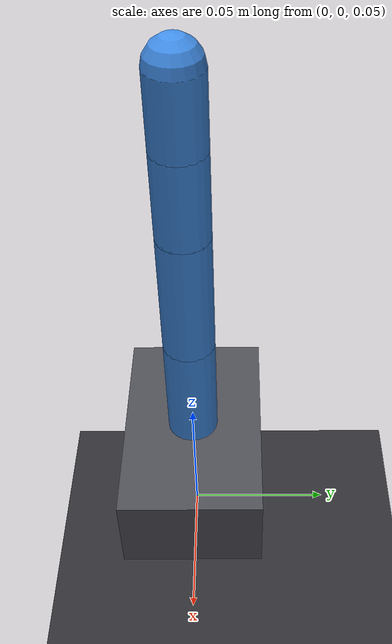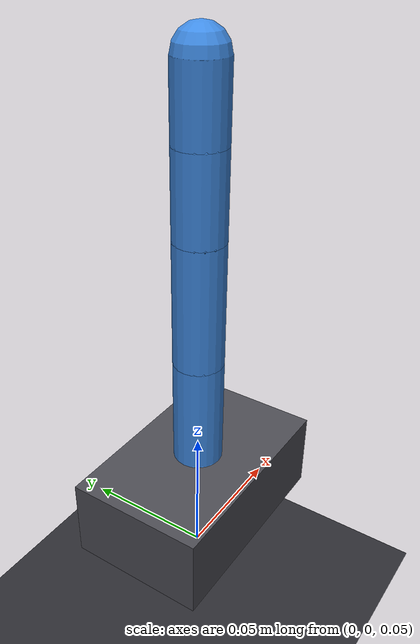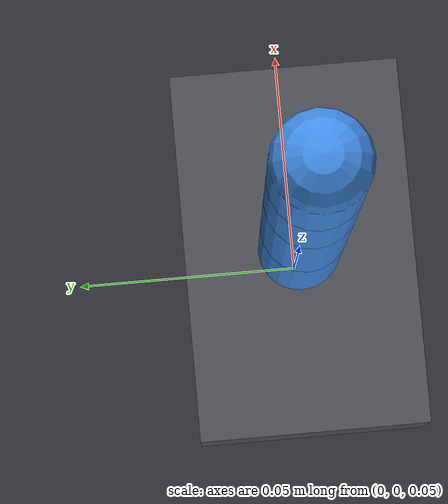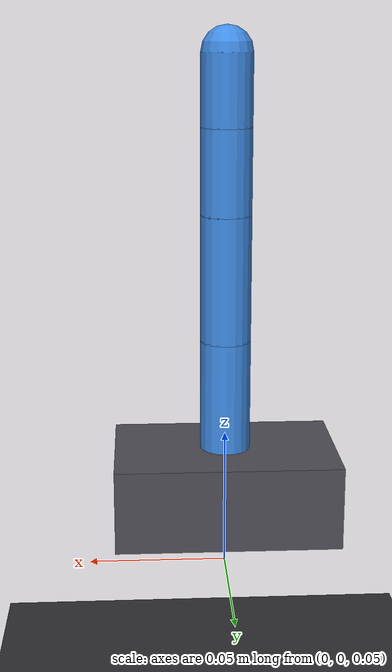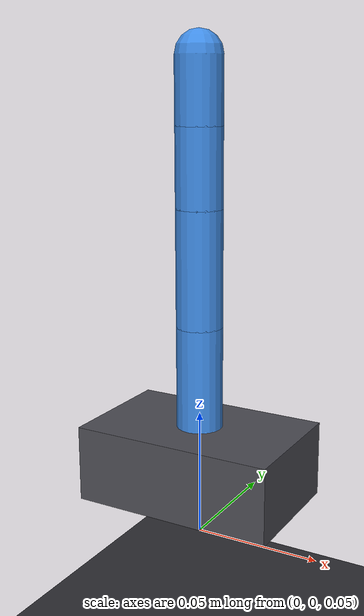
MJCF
<mujoco model="single_finger">
  <compiler angle="radian" autolimits="true"/>
  <option timestep="0.002" gravity="0 0 -9.81" integrator="implicitfast"/>

  <default>
    <joint damping="0.15" armature="0.01"/>
    <geom type="capsule" size="0.009" rgba="0.25 0.55 0.9 1" density="700"/>
    <position kp="12" kv="1.2" ctrllimited="true"/>
  </default>

  <worldbody>
    <light pos="0 -0.4 0.5" dir="0 0.5 -1"/>
    <geom name="floor" type="plane" size="0.5 0.5 0.02" rgba="0.18 0.18 0.2 1"/>
    <body name="palm" pos="0 0 0.08">
      <geom type="box" size="0.04 0.025 0.015" rgba="0.3 0.3 0.33 1"/>
      <body name="metacarpal" pos="0 0 0.015">
        <joint name="j0_abduction" axis="0 0 1" range="-0.4 0.4"/>
        <geom fromto="0 0 0 0 0 0.04"/>
        <body name="proximal" pos="0 0 0.04">
          <joint name="j1_mcp" axis="0 1 0" range="-0.1 1.3"/>
          <geom fromto="0 0 0 0 0 0.045"/>
          <body name="middle" pos="0 0 0.045">
            <joint name="j2_pip" axis="0 1 0" range="0 1.4"/>
            <geom fromto="0 0 0 0 0 0.03"/>
            <body name="distal" pos="0 0 0.03">
              <joint name="j3_dip" axis="0 1 0" range="0 1.1"/>
              <geom fromto="0 0 0 0 0 0.025"/>
            </body>
          </body>
        </body>
      </body>
    </body>
  </worldbody>

  <actuator>
    <position name="a0" joint="j0_abduction" ctrlrange="-0.4 0.4"/>
    <position name="a1" joint="j1_mcp" ctrlrange="-0.1 1.3"/>
    <position name="a2" joint="j2_pip" ctrlrange="0 1.4"/>
    <position name="a3" joint="j3_dip" ctrlrange="0 1.1"/>
  </actuator>
</mujoco>
